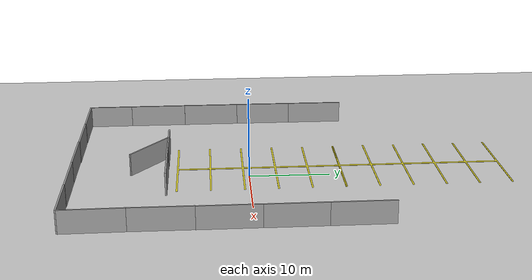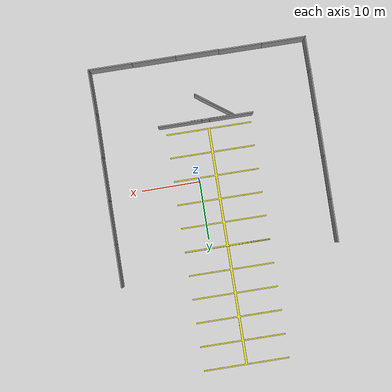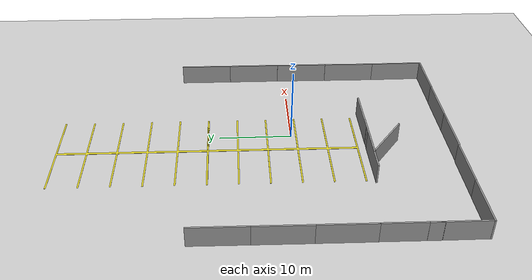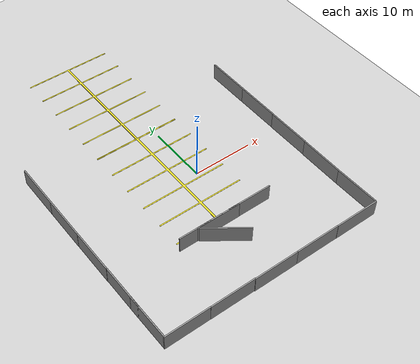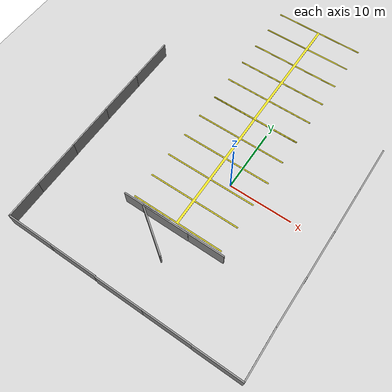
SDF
<sdf version="1.4">
 <world name="default">
  <model name="ground_plane">
   <static>1</static>
   <link name="link">
    <collision name="collision">
     <geometry><plane><normal>0 0 1</normal><size>100 100</size></plane></geometry>
     <surface><friction><ode><mu>100</mu><mu2>50</mu2></ode></friction></surface>
    </collision>
    <visual name="visual">
     <cast_shadows>0</cast_shadows>
     <geometry><plane><normal>0 0 1</normal><size>100 100</size></plane></geometry>
     <material>
      <script><uri>file://media/materials/scripts/gazebo.material</uri><name>Gazebo/Grey</name></script>
     </material>
    </visual>
    <velocity_decay><linear>0</linear><angular>0</angular></velocity_decay>
   </link>
  </model>
  <model name="grey_wall_0">
   <static>1</static>
   <link name="link">
    <pose>0 0 1.4 0 -0 0</pose>
    <collision name="collision"><geometry><box><size>7.5 0.2 2.8</size></box></geometry></collision>
    <visual name="visual">
     <cast_shadows>0</cast_shadows>
     <geometry><box><size>7.5 0.2 2.8</size></box></geometry>
     <material>
      <script>
       <uri>model://grey_wall/materials/scripts</uri>
       <uri>model://grey_wall/materials/textures</uri>
       <name>vrc/grey_wall</name>
      </script>
     </material>
    </visual>
    <velocity_decay><linear>0</linear><angular>0</angular></velocity_decay>
   </link>
   <pose>11.9495 -21.5417 0 0 -0 0</pose>
  </model>
  <model name="grey_wall_1">
   <static>1</static>
   <link name="link">
    <pose>0 0 1.4 0 -0 0</pose>
    <collision name="collision"><geometry><box><size>7.5 0.2 2.8</size></box></geometry></collision>
    <visual name="visual">
     <cast_shadows>0</cast_shadows>
     <geometry><box><size>7.5 0.2 2.8</size></box></geometry>
     <material>
      <script>
       <uri>model://grey_wall/materials/scripts</uri>
       <uri>model://grey_wall/materials/textures</uri>
       <name>vrc/grey_wall</name>
      </script>
     </material>
    </visual>
    <velocity_decay><linear>0</linear><angular>0</angular></velocity_decay>
   </link>
   <pose>4.46115 -21.5125 0 0 -0 0</pose>
  </model>
  <model name="grey_wall_2">
   <static>1</static>
   <link name="link">
    <pose>0 0 1.4 0 -0 0</pose>
    <collision name="collision"><geometry><box><size>7.5 0.2 2.8</size></box></geometry></collision>
    <visual name="visual">
     <cast_shadows>0</cast_shadows>
     <geometry><box><size>7.5 0.2 2.8</size></box></geometry>
     <material>
      <script>
       <uri>model://grey_wall/materials/scripts</uri>
       <uri>model://grey_wall/materials/textures</uri>
       <name>vrc/grey_wall</name>
      </script>
     </material>
    </visual>
    <velocity_decay><linear>0</linear><angular>0</angular></velocity_decay>
   </link>
   <pose>-3 -21.5146 0 0 -0 0</pose>
  </model>
  <model name="grey_wall_3">
   <static>1</static>
   <link name="link">
    <pose>0 0 1.4 0 -0 0</pose>
    <collision name="collision"><geometry><box><size>7.5 0.2 2.8</size></box></geometry></collision>
    <visual name="visual">
     <cast_shadows>0</cast_shadows>
     <geometry><box><size>7.5 0.2 2.8</size></box></geometry>
     <material>
      <script>
       <uri>model://grey_wall/materials/scripts</uri>
       <uri>model://grey_wall/materials/textures</uri>
       <name>vrc/grey_wall</name>
      </script>
     </material>
    </visual>
    <velocity_decay><linear>0</linear><angular>0</angular></velocity_decay>
   </link>
   <pose>-10.457 -21.4428 0 0 -0 0</pose>
  </model>
  <model name="grey_wall_4">
   <static>1</static>
   <link name="link">
    <pose>0 0 1.4 0 -0 0</pose>
    <collision name="collision"><geometry><box><size>7.5 0.2 2.8</size></box></geometry></collision>
    <visual name="visual">
     <cast_shadows>0</cast_shadows>
     <geometry><box><size>7.5 0.2 2.8</size></box></geometry>
     <material>
      <script>
       <uri>model://grey_wall/materials/scripts</uri>
       <uri>model://grey_wall/materials/textures</uri>
       <name>vrc/grey_wall</name>
      </script>
     </material>
    </visual>
    <velocity_decay><linear>0</linear><angular>0</angular></velocity_decay>
   </link>
   <pose>-17.8741 -21.4252 0 0 -0 0</pose>
  </model>
  <model name="grey_wall_6">
   <static>1</static>
   <link name="link">
    <pose>0 0 1.4 0 -0 0</pose>
    <collision name="collision"><geometry><box><size>7.5 0.2 2.8</size></box></geometry></collision>
    <visual name="visual">
     <cast_shadows>0</cast_shadows>
     <geometry><box><size>7.5 0.2 2.8</size></box></geometry>
     <material>
      <script>
       <uri>model://grey_wall/materials/scripts</uri>
       <uri>model://grey_wall/materials/textures</uri>
       <name>vrc/grey_wall</name>
      </script>
     </material>
    </visual>
    <velocity_decay><linear>0</linear><angular>0</angular></velocity_decay>
   </link>
   <pose>15.6069 -17.7328 0 0 -0 1.58364</pose>
  </model>
  <model name="grey_wall_7">
   <static>1</static>
   <link name="link">
    <pose>0 0 1.4 0 -0 0</pose>
    <collision name="collision"><geometry><box><size>7.5 0.2 2.8</size></box></geometry></collision>
    <visual name="visual">
     <cast_shadows>0</cast_shadows>
     <geometry><box><size>7.5 0.2 2.8</size></box></geometry>
     <material>
      <script>
       <uri>model://grey_wall/materials/scripts</uri>
       <uri>model://grey_wall/materials/textures</uri>
       <name>vrc/grey_wall</name>
      </script>
     </material>
    </visual>
    <velocity_decay><linear>0</linear><angular>0</angular></velocity_decay>
   </link>
   <pose>15.5792 -10.2805 0 0 0 -1.5757</pose>
  </model>
  <model name="grey_wall_8">
   <static>1</static>
   <link name="link">
    <pose>0 0 1.4 0 -0 0</pose>
    <collision name="collision"><geometry><box><size>7.5 0.2 2.8</size></box></geometry></collision>
    <visual name="visual">
     <cast_shadows>0</cast_shadows>
     <geometry><box><size>7.5 0.2 2.8</size></box></geometry>
     <material>
      <script>
       <uri>model://grey_wall/materials/scripts</uri>
       <uri>model://grey_wall/materials/textures</uri>
       <name>vrc/grey_wall</name>
      </script>
     </material>
    </visual>
    <velocity_decay><linear>0</linear><angular>0</angular></velocity_decay>
   </link>
   <pose>15.6357 -2.80636 0 0 0 -1.57048</pose>
  </model>
  <model name="grey_wall_9">
   <static>1</static>
   <link name="link">
    <pose>0 0 1.4 0 -0 0</pose>
    <collision name="collision"><geometry><box><size>7.5 0.2 2.8</size></box></geometry></collision>
    <visual name="visual">
     <cast_shadows>0</cast_shadows>
     <geometry><box><size>7.5 0.2 2.8</size></box></geometry>
     <material>
      <script>
       <uri>model://grey_wall/materials/scripts</uri>
       <uri>model://grey_wall/materials/textures</uri>
       <name>vrc/grey_wall</name>
      </script>
     </material>
    </visual>
    <velocity_decay><linear>0</linear><angular>0</angular></velocity_decay>
   </link>
   <pose>15.6626 4.62392 0 0 0 -1.57072</pose>
  </model>
  <model name="grey_wall_10">
   <static>1</static>
   <link name="link">
    <pose>0 0 1.4 0 -0 0</pose>
    <collision name="collision"><geometry><box><size>7.5 0.2 2.8</size></box></geometry></collision>
    <visual name="visual">
     <cast_shadows>0</cast_shadows>
     <geometry><box><size>7.5 0.2 2.8</size></box></geometry>
     <material>
      <script>
       <uri>model://grey_wall/materials/scripts</uri>
       <uri>model://grey_wall/materials/textures</uri>
       <name>vrc/grey_wall</name>
      </script>
     </material>
    </visual>
    <velocity_decay><linear>0</linear><angular>0</angular></velocity_decay>
   </link>
   <pose>15.665 11.9925 -0 0 0 -1.57143</pose>
  </model>
  <model name="grey_wall_15">
   <static>1</static>
   <link name="link">
    <pose>0 0 1.4 0 -0 0</pose>
    <collision name="collision"><geometry><box><size>7.5 0.2 2.8</size></box></geometry></collision>
    <visual name="visual">
     <cast_shadows>0</cast_shadows>
     <geometry><box><size>7.5 0.2 2.8</size></box></geometry>
     <material>
      <script>
       <uri>model://grey_wall/materials/scripts</uri>
       <uri>model://grey_wall/materials/textures</uri>
       <name>vrc/grey_wall</name>
      </script>
     </material>
    </visual>
    <velocity_decay><linear>0</linear><angular>0</angular></velocity_decay>
   </link>
   <pose>-21.5248 -17.7015 0 0 0 -1.56656</pose>
  </model>
  <model name="grey_wall_16">
   <static>1</static>
   <link name="link">
    <pose>0 0 1.4 0 -0 0</pose>
    <collision name="collision"><geometry><box><size>7.5 0.2 2.8</size></box></geometry></collision>
    <visual name="visual">
     <cast_shadows>0</cast_shadows>
     <geometry><box><size>7.5 0.2 2.8</size></box></geometry>
     <material>
      <script>
       <uri>model://grey_wall/materials/scripts</uri>
       <uri>model://grey_wall/materials/textures</uri>
       <name>vrc/grey_wall</name>
      </script>
     </material>
    </visual>
    <velocity_decay><linear>0</linear><angular>0</angular></velocity_decay>
   </link>
   <pose>-21.5208 -12 0 0 0 -1.57415</pose>
  </model>
  <model name="grey_wall_17">
   <static>1</static>
   <link name="link">
    <pose>0 0 1.4 0 -0 0</pose>
    <collision name="collision"><geometry><box><size>7.5 0.2 2.8</size></box></geometry></collision>
    <visual name="visual">
     <cast_shadows>0</cast_shadows>
     <geometry><box><size>7.5 0.2 2.8</size></box></geometry>
     <material>
      <script>
       <uri>model://grey_wall/materials/scripts</uri>
       <uri>model://grey_wall/materials/textures</uri>
       <name>vrc/grey_wall</name>
      </script>
     </material>
    </visual>
    <velocity_decay><linear>0</linear><angular>0</angular></velocity_decay>
   </link>
   <pose>-21.5209 -4.59777 0 0 0 -1.57509</pose>
  </model>
  <model name="grey_wall_18">
   <static>1</static>
   <link name="link">
    <pose>0 0 1.4 0 -0 0</pose>
    <collision name="collision"><geometry><box><size>7.5 0.2 2.8</size></box></geometry></collision>
    <visual name="visual">
     <cast_shadows>0</cast_shadows>
     <geometry><box><size>7.5 0.2 2.8</size></box></geometry>
     <material>
      <script>
       <uri>model://grey_wall/materials/scripts</uri>
       <uri>model://grey_wall/materials/textures</uri>
       <name>vrc/grey_wall</name>
      </script>
     </material>
    </visual>
    <velocity_decay><linear>0</linear><angular>0</angular></velocity_decay>
   </link>
   <pose>-21.497 2.74679 0 0 0 -1.57722</pose>
  </model>
  <model name="grey_wall_19">
   <static>1</static>
   <link name="link">
    <pose>0 0 1.4 0 -0 0</pose>
    <collision name="collision"><geometry><box><size>7.5 0.2 2.8</size></box></geometry></collision>
    <visual name="visual">
     <cast_shadows>0</cast_shadows>
     <geometry><box><size>7.5 0.2 2.8</size></box></geometry>
     <material>
      <script>
       <uri>model://grey_wall/materials/scripts</uri>
       <uri>model://grey_wall/materials/textures</uri>
       <name>vrc/grey_wall</name>
      </script>
     </material>
    </visual>
    <velocity_decay><linear>0</linear><angular>0</angular></velocity_decay>
   </link>
   <pose>-21.452 10.0969 0 0 0 -1.57666</pose>
  </model>
  <model name="Parking Lot 2">
   <static>1</static>
   <link name="link">
    <inertial>
     <mass>1</mass>
     <inertia><ixx>1</ixx><iyy>1</iyy><izz>1</izz><ixy>0</ixy><ixz>0</ixz><iyz>0</iyz></inertia>
    </inertial>
    <collision name="collision">
     <geometry><mesh><uri>model://parking_lot_2/meshes/parking_lot_2.dae</uri></mesh></geometry>
    </collision>
    <visual name="visual">
     <material>
      <script><uri>file://media/materials/scripts/gazebo.material</uri><name>Gazebo/YellowGlow</name></script>
     </material>
     <geometry>
      <mesh><uri>model://parking_lot_2/meshes/parking_lot_2.dae</uri><scale>0.0012 0.0013 0.002</scale></mesh>
     </geometry>
    </visual>
    <velocity_decay><linear>0</linear><angular>0</angular></velocity_decay>
   </link>
   <pose>-10.3999 -9.00105 0 0 -0 0</pose>
  </model>
  <model name="Parking Lot 2_0">
   <static>1</static>
   <link name="link">
    <inertial>
     <mass>1</mass>
     <inertia><ixx>1</ixx><iyy>1</iyy><izz>1</izz><ixy>0</ixy><ixz>0</ixz><iyz>0</iyz></inertia>
    </inertial>
    <collision name="collision">
     <geometry><mesh><uri>model://parking_lot_2/meshes/parking_lot_2.dae</uri></mesh></geometry>
    </collision>
    <visual name="visual">
     <material>
      <script><uri>file://media/materials/scripts/gazebo.material</uri><name>Gazebo/YellowGlow</name></script>
     </material>
     <geometry>
      <mesh><uri>model://parking_lot_2/meshes/parking_lot_2.dae</uri><scale>0.0012 0.0013 0.002</scale></mesh>
     </geometry>
    </visual>
    <velocity_decay><linear>0</linear><angular>0</angular></velocity_decay>
   </link>
   <pose>-10.4293 11.509 0 0 -0 0</pose>
  </model>
  <model name="grey_wall_37">
   <static>1</static>
   <link name="link">
    <pose>0 0 1.4 0 -0 0</pose>
    <collision name="collision"><geometry><box><size>7.5 0.2 2.8</size></box></geometry></collision>
    <visual name="visual">
     <cast_shadows>0</cast_shadows>
     <geometry><box><size>7.5 0.2 2.8</size></box></geometry>
     <material>
      <script>
       <uri>model://grey_wall/materials/scripts</uri>
       <uri>model://grey_wall/materials/textures</uri>
       <name>vrc/grey_wall</name>
      </script>
     </material>
    </visual>
    <velocity_decay><linear>0</linear><angular>0</angular></velocity_decay>
   </link>
   <pose>1.70753 -10.1147 0 0 -0 0</pose>
  </model>
  <model name="grey_wall_38">
   <static>1</static>
   <link name="link">
    <pose>0 0 1.4 0 -0 0</pose>
    <collision name="collision"><geometry><box><size>7.5 0.2 2.8</size></box></geometry></collision>
    <visual name="visual">
     <cast_shadows>0</cast_shadows>
     <geometry><box><size>7.5 0.2 2.8</size></box></geometry>
     <material>
      <script>
       <uri>model://grey_wall/materials/scripts</uri>
       <uri>model://grey_wall/materials/textures</uri>
       <name>vrc/grey_wall</name>
      </script>
     </material>
    </visual>
    <velocity_decay><linear>0</linear><angular>0</angular></velocity_decay>
   </link>
   <pose>-3.96627 -10.1473 0 0 -0 0</pose>
  </model>
  <model name="grey_wall_39">
   <static>1</static>
   <link name="link">
    <pose>0 0 1.4 0 -0 0</pose>
    <collision name="collision"><geometry><box><size>7.5 0.2 2.8</size></box></geometry></collision>
    <visual name="visual">
     <cast_shadows>0</cast_shadows>
     <geometry><box><size>7.5 0.2 2.8</size></box></geometry>
     <material>
      <script>
       <uri>model://grey_wall/materials/scripts</uri>
       <uri>model://grey_wall/materials/textures</uri>
       <name>vrc/grey_wall</name>
      </script>
     </material>
    </visual>
    <velocity_decay><linear>0</linear><angular>0</angular></velocity_decay>
   </link>
   <pose>-7.0542 -10.1107 0 0 -0 0</pose>
  </model>
  <model name="grey_wall_40">
   <static>1</static>
   <link name="link">
    <pose>0 0 1.4 0 -0 0</pose>
    <collision name="collision"><geometry><box><size>7.5 0.2 2.8</size></box></geometry></collision>
    <visual name="visual">
     <cast_shadows>0</cast_shadows>
     <geometry><box><size>7.5 0.2 2.8</size></box></geometry>
     <material>
      <script>
       <uri>model://grey_wall/materials/scripts</uri>
       <uri>model://grey_wall/materials/textures</uri>
       <name>vrc/grey_wall</name>
      </script>
     </material>
    </visual>
    <velocity_decay><linear>0</linear><angular>0</angular></velocity_decay>
   </link>
   <pose>-4.46918 -12.4631 -0 0 0 -0.629337</pose>
  </model>
 </world>
</sdf>
